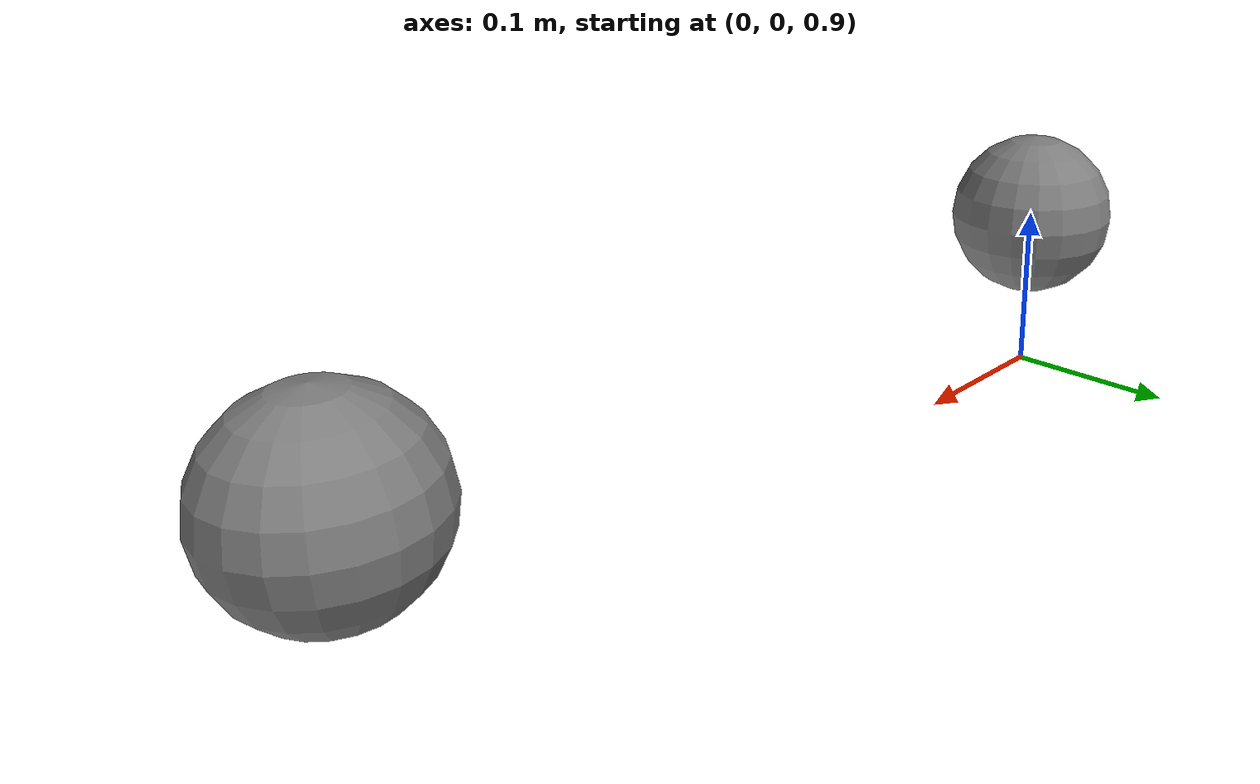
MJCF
<mujoco model="free_dof_length">
        <option gravity="0 0 -9.81" timestep="0.002">
            <flag sleep="enable"/>
        </option>
        <worldbody>
            <body name="base" pos="0 0 1">
                <freejoint name="free1"/>
                <geom type="sphere" size="0.05" mass="1.0"/>
                <body name="child" pos="0.5 0 0">
                    <geom type="sphere" size="0.05" mass="0.5"/>
                </body>
            </body>
        </worldbody>
    </mujoco>
